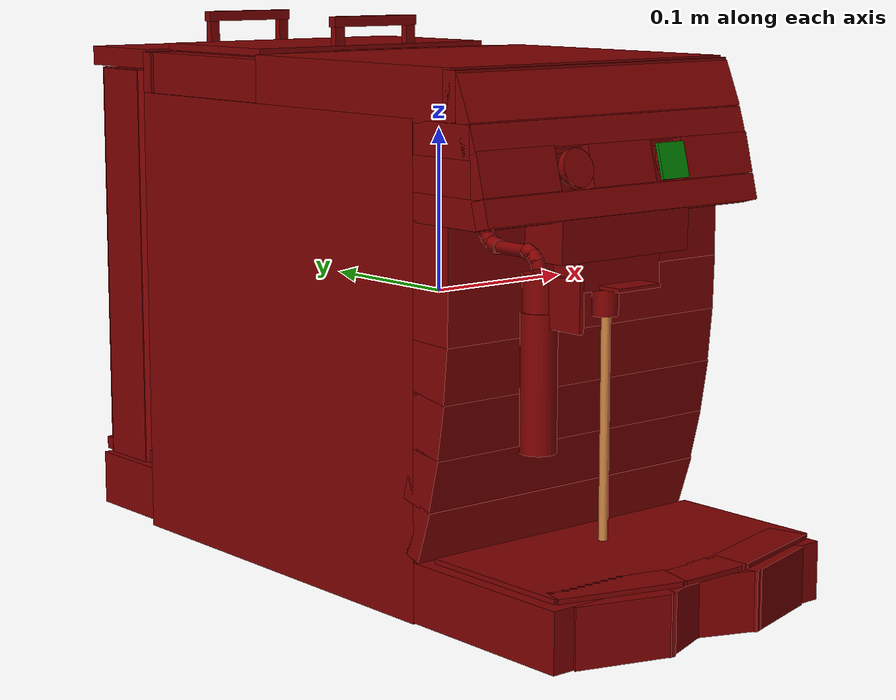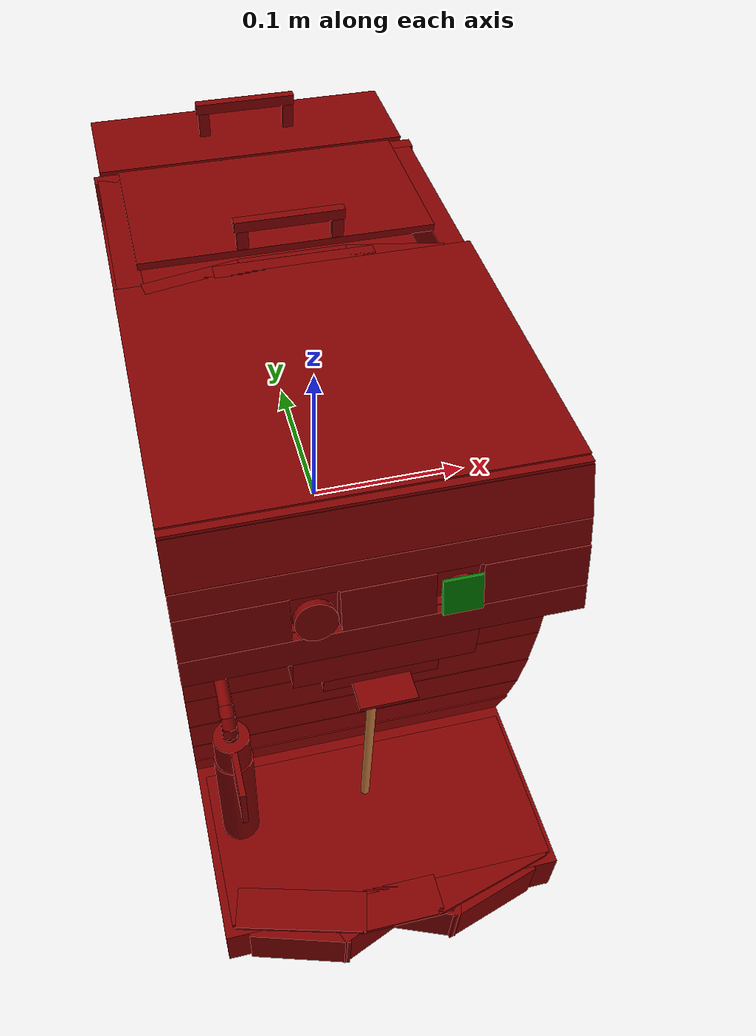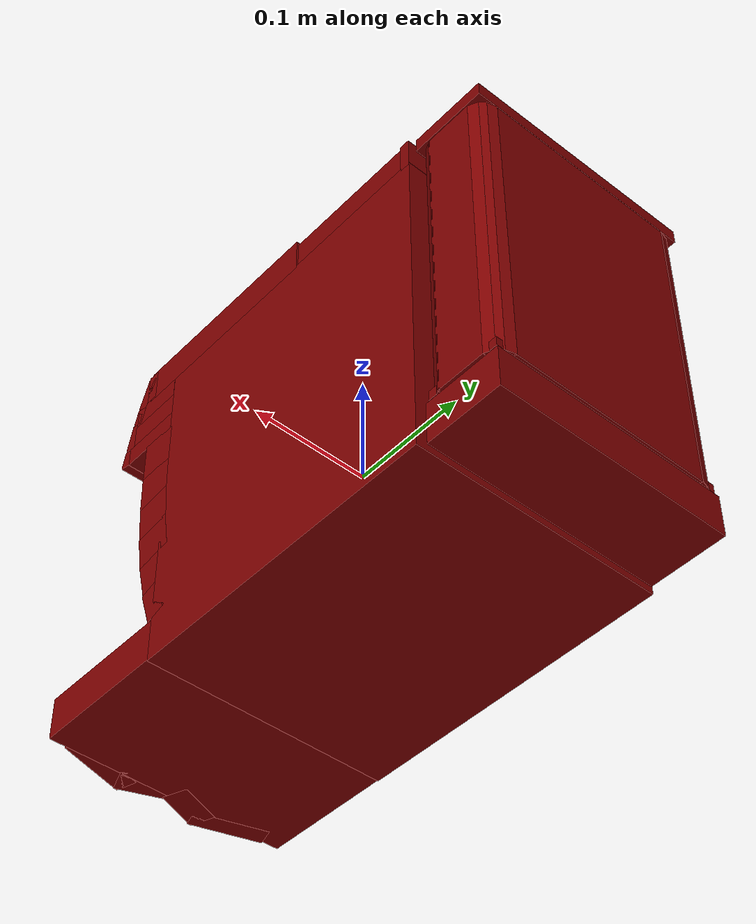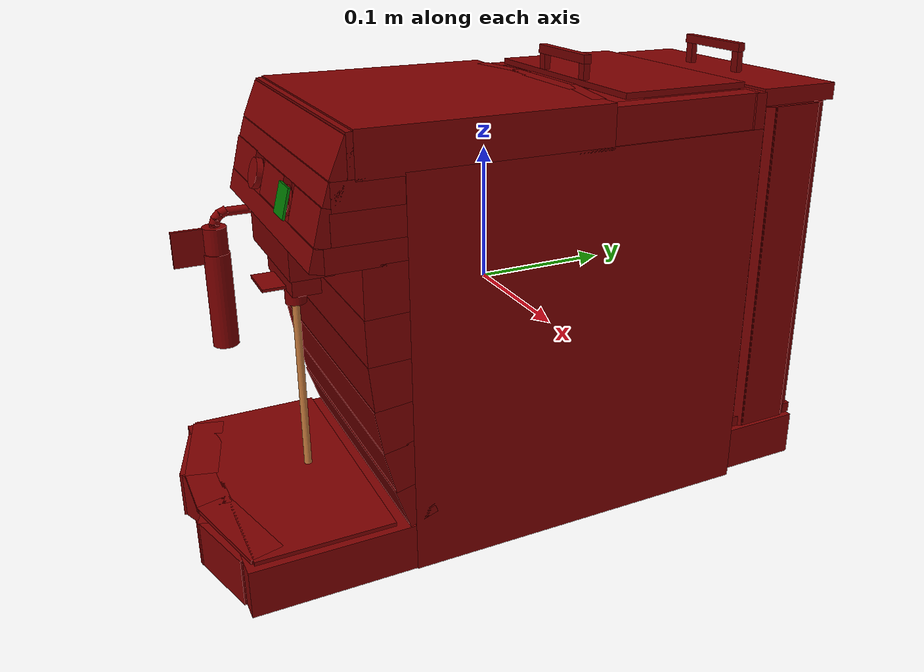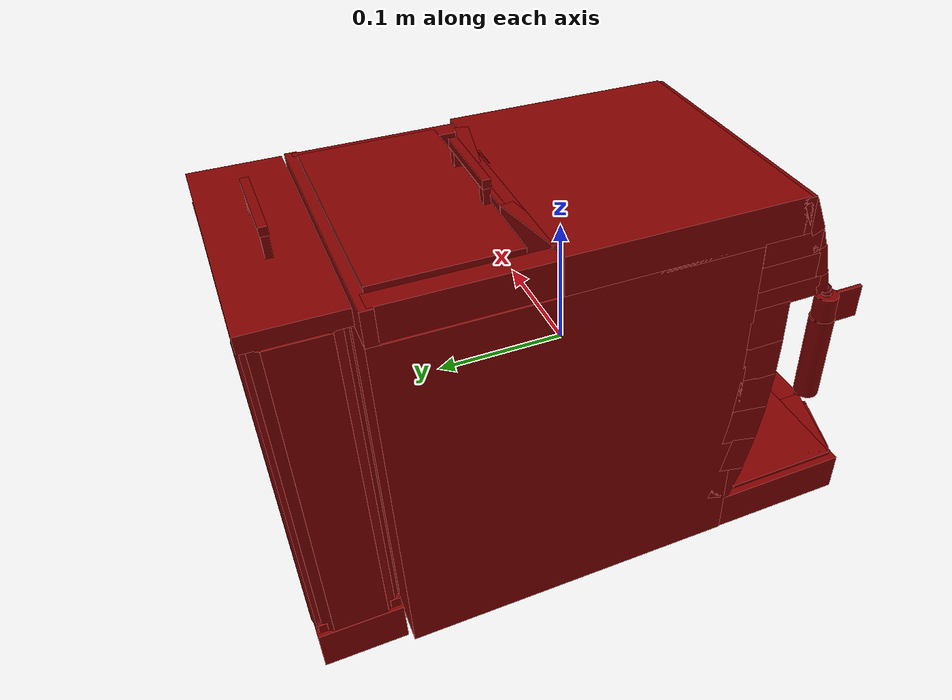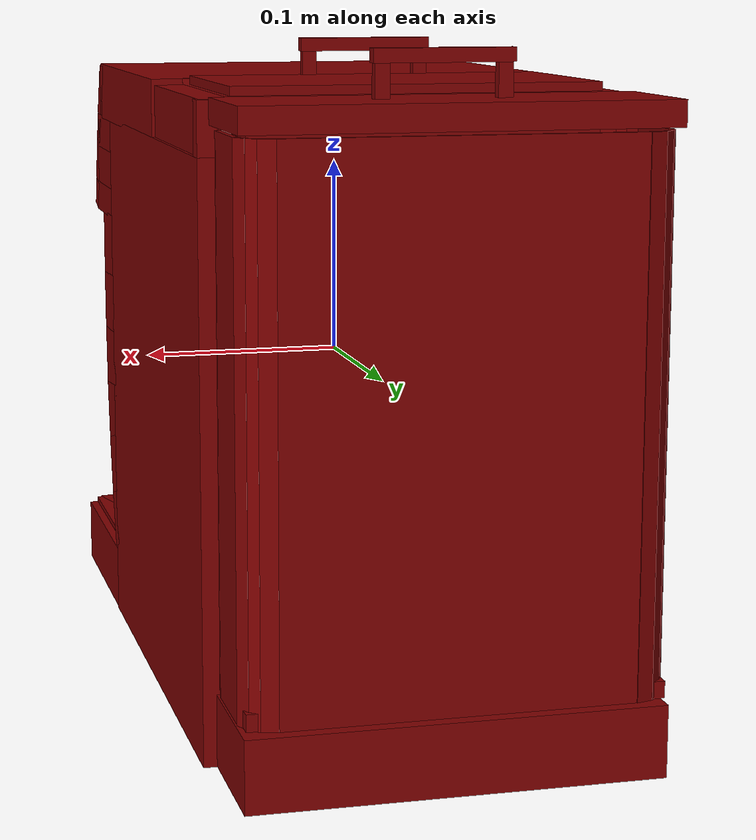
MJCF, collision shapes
<?xml version='1.0' encoding='UTF-8'?>
<mujoco model="model">
  <compiler angle="radian"/>
  <asset>
    <mesh file="visuals/Body001.obj" name="Body001_vis"/>
    <mesh file="visuals/Button001.obj" name="Button001_vis"/>
    <mesh file="visuals/Button002.obj" name="Button002_vis"/>
    <mesh file="visuals/Container001_Clear.obj" name="Container001_Clear_vis"/>
    <mesh file="visuals/Lever001.obj" name="Lever001_vis"/>
    <mesh file="visuals/Lid001.obj" name="Lid001_vis"/>
    <mesh file="visuals/Lid002.obj" name="Lid002_vis"/>
    <mesh file="visuals/Lid003.obj" name="Lid003_vis"/>
    <texture file="visuals/T_BC001.png" name="Body001_material" type="2d"/>
    <material name="Body001_material" rgba="1 1 1 1.0" texture="Body001_material" shininess="0.5" specular="0.3103448502657381"/>
    <texture file="visuals/T_BC001.png" name="Button001_material" type="2d"/>
    <material name="Button001_material" rgba="1 1 1 1.0" texture="Button001_material" shininess="0.5" specular="0.3103448502657381"/>
    <texture file="visuals/T_BC001.png" name="Button002_material" type="2d"/>
    <material name="Button002_material" rgba="1 1 1 1.0" texture="Button002_material" shininess="0.5" specular="0.3103448502657381"/>
    <texture file="visuals/T_BC001.png" name="Container001_Clear_material" type="2d"/>
    <material name="Container001_Clear_material" rgba="1 1 1 0.30000001192092896" texture="Container001_Clear_material" shininess="0.5" specular="0.3103448502657381"/>
    <texture file="visuals/T_BC001.png" name="Lid003_material" type="2d"/>
    <material name="Lid003_material" rgba="1 1 1 1.0" texture="Lid003_material" shininess="0.5" specular="0.3103448502657381"/>
    <texture file="visuals/T_BC001.png" name="Lever001_material" type="2d"/>
    <material name="Lever001_material" rgba="1 1 1 1.0" texture="Lever001_material" shininess="0.5" specular="0.3103448502657381"/>
    <texture file="visuals/T_BC001.png" name="Lid001_material" type="2d"/>
    <material name="Lid001_material" rgba="1 1 1 1.0" texture="Lid001_material" shininess="0.5" specular="0.3103448502657381"/>
    <texture file="visuals/T_BC001.png" name="Lid002_material" type="2d"/>
    <material name="Lid002_material" rgba="1 1 1 1.0" texture="Lid002_material" shininess="0.5" specular="0.3103448502657381"/>
  </asset>
  <default>
    <default class="visual">
      <geom conaffinity="0" contype="0" group="1" type="mesh"/>
    </default>
    <default class="collision">
      <geom group="0" rgba="0.5 0 0 0.5"/>
    </default>
    <default class="spawn">
      <geom group="0" rgba="1 1 1 0.5" contype="0" conaffinity="0"/>
      <site group="0" rgba="1 1 1 0.5"/>
    </default>
    <default class="region">
      <geom group="1" conaffinity="0" contype="0" rgba="0 1 0 0"/>
    </default>
  </default>
  <worldbody>
    <body>
      <body name="object">
        <geom class="collision" type="box" pos="0.037134 -0.160527 0.090308" size="0.010415244847536087 0.010415244847536087 0.0008930626208893955" quat="0.7933533191680908 0.6087614297866821 -1.3517219117058102e-16 -2.6126816801125714e-24" name="start_button" rgba="0.0 0.5 0 0.5"/>
        <site type="cylinder" rgba="0.8 0.5 0.25 1" size="0.0027536980342119932 0.07233459502458572" pos="-0.000577 -0.147272 -0.064970" name="coffee_liquid"/>
        <site rgba="0 0 0 0" size="0.009999999776482582 0.009999999776482582" pos="-0.000577 -0.147272 -0.117414" name="receptacle_place_site"/>
        <geom mesh="Body001_vis" type="mesh" solimp="0.998 0.998 0.001" solref="0.001 1" density="100" friction="0.95 0.3 0.1" class="visual" material="Body001_material"/>
        <geom class="collision" type="box" pos="-0.000000 0.033076 -0.024389" size="0.10385061055421829 0.13536663353443146 0.1417696475982666" quat="1.0 0.0 0.0 0.0"/>
        <geom class="collision" type="box" pos="0.000000 0.164074 0.129167" size="0.10385061055421829 0.004345276392996311 0.013829709030687809" quat="1.0 0.0 0.0 0.0"/>
        <geom class="collision" type="box" pos="-0.094301 0.103766 0.129167" size="0.05989970266819 0.007561163976788521 0.01382970716804266" quat="0.7071068286895752 0.0 -0.0 -0.7071067690849304"/>
        <geom class="collision" type="box" pos="0.094642 0.103766 0.129167" size="0.05989970266819 0.007561163976788521 0.01382970716804266" quat="0.7071068286895752 0.0 -0.0 -0.7071067690849304"/>
        <geom class="collision" type="box" pos="0.000000 -0.044546 0.130653" size="0.10385061055421829 0.08900878578424454 0.015315547585487366" quat="1.0 0.0 0.0 0.0"/>
        <geom class="collision" type="box" pos="0.000000 0.047775 0.130653" size="0.04721876606345177 0.0055664400570094585 0.015315547585487366" quat="1.0 0.0 0.0 0.0"/>
        <geom class="collision" type="box" pos="0.000000 0.055288 0.130653" size="0.03188616409897804 0.0018839340191334486 0.015315547585487366" quat="1.0 0.0 0.0 0.0"/>
        <geom class="collision" type="box" pos="-0.059276 0.046579 0.130653" size="0.028971705585718155 0.004871274344623089 0.015315547585487366" quat="0.9953288435935974 0.0 0.0 0.09654258191585541"/>
        <geom class="collision" type="box" pos="0.058891 0.046664 0.130653" size="0.028971707448363304 0.005043487995862961 0.015315547585487366" quat="9.394273803309261e-08 0.09654244780540466 0.9953288435935974 1.8650882793735946e-07"/>
        <geom class="collision" type="box" pos="0.000000 -0.159918 -0.147898" size="0.10385061055421829 0.057872675359249115 0.017408352345228195" quat="1.0 0.0 0.0 0.0"/>
        <geom class="collision" type="box" pos="-0.059053 -0.220451 -0.147898" size="0.030084267258644104 0.007930274121463299 0.017408352345228195" quat="0.9896388053894043 0.0 -0.0 -0.143579363822937"/>
        <geom class="collision" type="box" pos="0.057860 -0.219498 -0.147898" size="0.030084259808063507 0.008903853595256805 0.017408352345228195" quat="5.1323603145192465e-08 -0.14357930421829224 0.9896388053894043 1.720726459097932e-07"/>
        <geom class="collision" type="box" pos="-0.020771 -0.219244 -0.147898" size="0.01983846351504326 0.010606835596263409 0.017408352345228195" quat="0.9831233620643616 0.0 0.0 0.1829438954591751"/>
        <geom class="collision" type="box" pos="0.020363 -0.219244 -0.147898" size="0.01983846351504326 0.010606835596263409 0.017408352345228195" quat="1.0984424392290748e-07 0.1829439103603363 0.9831233620643616 1.7760930859367363e-07"/>
        <geom class="collision" type="box" pos="0.000000 -0.101451 -0.111393" size="0.10385061055421829 0.01613113470375538 0.010602785274386406" quat="0.5825121402740479 0.8128219842910767 -1.8048270990651252e-16 9.235185939952428e-24"/>
        <geom class="collision" type="box" pos="0.000000 -0.108744 -0.081855" size="0.10385061055421829 0.01613113470375538 0.011195383034646511" quat="0.6141020655632019 0.7892266511917114 -1.7524350672527925e-16 -2.0004558034709542e-24"/>
        <geom class="collision" type="box" pos="0.000000 -0.110567 -0.050251" size="0.10385061055421829 0.016131136566400528 0.015758054330945015" quat="0.6442039012908936 0.7648537755012512 -1.6983164117170412e-16 -1.4513890496866805e-23"/>
        <geom class="collision" type="box" pos="-0.000000 -0.114214 -0.019377" size="0.10385061055421829 0.016131136566400528 0.015758054330945015" quat="0.6718460917472839 0.7406907677650452 -1.6446637566511777e-16 -1.333264544422343e-23"/>
        <geom class="collision" type="box" pos="-0.000000 -0.116159 0.011863" size="0.10385061055421829 0.01613113470375538 0.015758052468299866" quat="0.6962460279464722 0.7178032398223877 -1.5938432356537978e-16 5.027924886283712e-24"/>
        <geom class="collision" type="box" pos="-0.000000 -0.116402 0.044925" size="0.10385061055421829 0.017620937898755074 0.015758058056235313" quat="0.707630455493927 0.7065827250480652 -1.5689288203014966e-16 -2.733011761581816e-23"/>
        <geom class="collision" type="box" pos="0.000000 -0.128663 0.069375" size="0.10385061055421829 0.026443947106599808 0.008293532766401768" quat="1.0 0.0 0.0 0.0"/>
        <geom class="collision" type="box" pos="0.000000 -0.125726 0.107413" size="0.10385061055421829 0.023252753540873528 0.009452405385673046" quat="1.0 0.0 0.0 0.0"/>
        <geom class="collision" type="box" pos="0.000000 -0.132817 0.130913" size="0.10385061055421829 0.005140719469636679 0.013905131258070469" quat="1.0 0.0 0.0 0.0"/>
        <geom class="collision" type="box" pos="0.000000 -0.139338 0.128565" size="0.10385061055421829 0.005140719469636679 0.013905131258070469" quat="0.9797577261924744 -0.20018696784973145 4.4450442804778463e-17 2.0013975061765618e-24"/>
        <geom class="collision" type="box" pos="0.000000 -0.146895 0.108244" size="0.10385061055421829 0.005140719469636679 0.007589207962155342" quat="0.9886624813079834 -0.15015475451946259 3.334105645361158e-17 -1.2039743046902811e-24"/>
        <geom class="collision" type="box" pos="0.000000 -0.157908 0.069960" size="0.10385061055421829 0.005140719469636679 0.007705593015998602" quat="0.9922476410865784 -0.12427633255720139 2.7594894127279263e-17 5.797133688633858e-25"/>
        <geom class="collision" type="box" pos="0.000000 -0.146242 0.052543" size="0.048668261617422104 0.01614558883011341 0.01374830026179552" quat="1.0 0.0 0.0 0.0"/>
        <geom class="collision" type="box" pos="0.000000 -0.147138 0.029898" size="0.03141579404473305 0.010052923113107681 0.008940882049500942" quat="1.0 0.0 0.0 0.0"/>
        <geom class="collision" type="box" pos="0.000000 -0.165110 0.022910" size="0.015898415818810463 0.008515176363289356 0.0010712944203987718" quat="1.0 0.0 0.0 0.0"/>
        <geom class="collision" type="cylinder" pos="-0.000843 -0.146876 0.012854" size="0.007553964853286743 0.008512386120855808" quat="1.0 0.0 0.0 0.0"/>
        <geom class="collision" type="box" pos="0.000000 -0.126207 0.087855" size="0.10385061055421829 0.02403733879327774 0.010288608260452747" quat="1.0 0.0 0.0 0.0"/>
        <geom class="collision" type="box" pos="-0.000451 0.203702 -0.147206" size="0.0985279455780983 0.03189034387469292 0.017388582229614258" quat="1.0 0.0 0.0 0.0"/>
        <geom class="collision" type="box" pos="-0.075875 -0.152682 0.090054" size="0.027956640347838402 0.005140719469636679 0.01253354363143444" quat="0.9922476410865784 -0.12427633255720139 2.7594894127279263e-17 5.797133688633858e-25"/>
        <geom class="collision" type="box" pos="0.076319 -0.152794 0.089615" size="0.027513351291418076 0.005140719469636679 0.01208063866943121" quat="0.9922476410865784 -0.12427633255720139 2.7594894127279263e-17 5.797133688633858e-25"/>
        <geom class="collision" type="box" pos="0.000648 -0.152794 0.089615" size="0.0239991694688797 0.005140719469636679 0.01208063866943121" quat="0.9922476410865784 -0.12427633255720139 2.7594894127279263e-17 5.797133688633858e-25"/>
        <body name="Button001">
          <joint axis="-1.4874174832110107e-17 0.9659257531166077 -0.2588190734386444" pos="-0.036265 -0.159544 0.089546" limited="true" name="Button001_joint" range="0.0 0.003" type="slide" damping="1" frictionloss="1" armature=".01" stiffness="0.05" springref="-0.1"/>
          <geom mesh="Button001_vis" type="mesh" solimp="0.998 0.998 0.001" solref="0.001 1" density="100" friction="0.95 0.3 0.1" class="visual" material="Button001_material"/>
          <geom class="collision" type="cylinder" pos="-0.036265 -0.159324 0.090513" size="0.010931293480098248 0.0022768608760088682" quat="0.7933533191680908 0.6087614297866821 -1.3517219117058102e-16 -2.6126816801125714e-24"/>
        </body>
        <body name="Button002">
          <joint axis="-1.4874174832110107e-17 0.9659257531166077 -0.2588190734386444" pos="0.037134 -0.159293 0.089977" limited="true" name="Button002_joint" range="0.0 0.003" type="slide" damping="1" frictionloss="1" armature=".01" stiffness="0.05" springref="-0.1"/>
          <geom mesh="Button002_vis" type="mesh" solimp="0.998 0.998 0.001" solref="0.001 1" density="100" friction="0.95 0.3 0.1" class="visual" material="Button002_material"/>
          <geom class="collision" type="cylinder" pos="0.037134 -0.158394 0.089736" size="0.010415244847536087 0.0008834953187033534" quat="0.7933533191680908 0.6087614297866821 -1.3517219117058102e-16 -2.6126816801125714e-24"/>
        </body>
        <body name="Container001_Clear">
          <joint axis="0.0 0.0 1.0" pos="-0.000597 0.203531 -0.011796" limited="true" name="Container001_Clear_joint" range="0.0 0.1" type="slide" damping="1" frictionloss="1" armature=".01" stiffness="0.05"/>
          <geom mesh="Container001_Clear_vis" type="mesh" solimp="0.998 0.998 0.001" solref="0.001 1" density="100" friction="0.95 0.3 0.1" class="visual" material="Container001_Clear_material"/>
          <geom class="collision" type="box" pos="-0.000000 0.235022 0.001668" size="0.08326917141675949 0.0012448341585695744 0.1288316249847412" quat="1.0 0.0 0.0 0.0"/>
          <geom class="collision" type="box" pos="-0.000000 0.172307 0.001668" size="0.08326917141675949 0.0012448341585695744 0.1288316249847412" quat="1.0 0.0 0.0 0.0"/>
          <geom class="collision" type="box" pos="-0.098437 0.203238 0.001668" size="0.02020031400024891 0.0012448341585695744 0.1288316249847412" quat="0.7071068286895752 0.0 -0.0 -0.7071067690849304"/>
          <geom class="collision" type="box" pos="0.097308 0.203238 0.001668" size="0.02020031400024891 0.0012448341585695744 0.1288316249847412" quat="0.7071068286895752 0.0 -0.0 -0.7071067690849304"/>
          <geom class="collision" type="box" pos="-0.096649 0.226436 0.001668" size="0.004168647341430187 0.0012448341585695744 0.1288316249847412" quat="0.529154360294342 0.0 -0.0 -0.8485255837440491"/>
          <geom class="collision" type="box" pos="-0.087107 0.234275 0.001668" size="0.004168647341430187 0.0012448341585695744 0.1288316249847412" quat="0.1368826925754547 0.0 -0.0 -0.9905872344970703"/>
          <geom class="collision" type="box" pos="-0.092850 0.231571 0.001668" size="0.002946387743577361 0.001244834391400218 0.1288316249847412" quat="0.3439255654811859 0.0 -0.0 -0.9389969110488892"/>
          <geom class="collision" type="box" pos="0.095756 0.226436 0.001668" size="0.004168651532381773 0.0012448378838598728 0.1288316249847412" quat="1.1032908986408074e-07 -0.8485255837440491 0.529154360294342 3.424172589916452e-08"/>
          <geom class="collision" type="box" pos="0.086214 0.234275 0.001668" size="0.0041686492040753365 0.0012448434717953205 0.1288316249847412" quat="1.879148925354457e-07 -0.9905872344970703 0.13688282668590546 -6.254319373510953e-08"/>
          <geom class="collision" type="box" pos="0.091957 0.231571 0.001668" size="0.002946389140561223 0.0012448435882106423 0.1288316249847412" quat="1.928527098016275e-07 -0.9389968514442444 0.34392574429512024 -3.959896588412448e-08"/>
          <geom class="collision" type="box" pos="-0.096649 0.181048 0.001668" size="0.004168651532381773 0.0012448378838598728 0.1288316249847412" quat="2.4111839636020704e-08 0.5291544795036316 0.8485255241394043 -1.0401195282838671e-07"/>
          <geom class="collision" type="box" pos="-0.087107 0.173208 0.001668" size="0.004168650135397911 0.0012448378838598728 0.1288316249847412" quat="6.445291234058459e-08 0.13688266277313232 0.9905872941017151 -8.512154181516962e-08"/>
          <geom class="collision" type="box" pos="-0.092850 0.175913 0.001668" size="0.002946391236037016 0.0012448380002751946 0.1288316249847412" quat="4.492661886956739e-08 0.34392574429512024 0.9389968514442444 -9.68579598747965e-08"/>
          <geom class="collision" type="box" pos="0.095756 0.181048 0.001668" size="0.004168648272752762 0.0012448362540453672 0.1288316249847412" quat="0.8485255837440491 4.6267196296412294e-08 5.708320038877446e-09 0.529154360294342"/>
          <geom class="collision" type="box" pos="0.086214 0.173208 0.001668" size="0.004168650135397911 0.0012448400957509875 0.1288316249847412" quat="0.9905872344970703 1.1312776848626527e-07 7.287757597396194e-08 0.13688282668590546"/>
          <geom class="collision" type="box" pos="0.091957 0.175913 0.001668" size="0.002946388442069292 0.0012448407942429185 0.1288316249847412" quat="0.9389968514442444 1.2196042575851607e-07 6.556465592666427e-08 0.34392574429512024"/>
          <geom class="collision" type="box" pos="-0.000451 0.203421 -0.122909" size="0.09727999567985535 0.030171487480401993 0.004045017994940281" quat="1.0 0.0 0.0 0.0"/>
          <body name="Lid003">
            <joint axis="0.0 0.0 1.0" pos="-0.000597 0.203531 0.137846" limited="true" name="Lid003_joint" range="0.0 0.1" type="slide" damping="1" frictionloss="1" armature=".01" stiffness="0.05"/>
            <geom mesh="Lid003_vis" type="mesh" solimp="0.998 0.998 0.001" solref="0.001 1" density="100" friction="0.95 0.3 0.1" class="visual" material="Lid003_material"/>
            <geom class="collision" type="box" pos="-0.000451 0.203421 0.138107" size="0.09930843114852905 0.03241795301437378 0.006119163706898689" quat="1.0 0.0 0.0 0.0"/>
            <geom class="collision" type="box" pos="0.000709 0.202845 0.162967" size="0.03243435546755791 0.0029803814832121134 0.003190913936123252" quat="1.0 0.0 0.0 0.0"/>
            <geom class="collision" type="box" pos="0.028879 0.202853 0.152093" size="0.0034317008685320616 0.0024682353250682354 0.007980492897331715" quat="1.0 0.0 0.0 0.0"/>
            <geom class="collision" type="box" pos="-0.027166 0.202853 0.152093" size="0.0034317008685320616 0.0024682353250682354 0.007980492897331715" quat="1.0 0.0 0.0 0.0"/>
          </body>
        </body>
        <body name="Lever001">
          <joint axis="0.0 0.0 1.0" pos="-0.084467 -0.140757 0.062141" limited="true" name="Lever001_joint" range="-0.7853981633974483 0.7853981633974483" type="hinge" damping="1" frictionloss="1" armature=".01" stiffness="0.01" springref="-0.1"/>
          <geom mesh="Lever001_vis" type="mesh" solimp="0.998 0.998 0.001" solref="0.001 1" density="100" friction="0.95 0.3 0.1" class="visual" material="Lever001_material"/>
          <geom class="collision" type="box" pos="-0.084467 -0.203820 0.026537" size="0.0014831729931756854 0.011660904623568058 0.014016982167959213" quat="1.0 0.0 0.0 0.0"/>
          <geom class="collision" type="cylinder" pos="-0.084467 -0.183260 -0.017476" size="0.00998516846448183 0.037780001759529114" quat="1.0 0.0 0.0 0.0"/>
          <geom class="collision" type="cylinder" pos="-0.084467 -0.183260 0.030370" size="0.009125753305852413 0.010445179417729378" quat="1.0 0.0 0.0 0.0"/>
          <geom class="collision" type="cylinder" pos="-0.084467 -0.162280 0.051163" size="0.0034377879928797483 0.011636033654212952" quat="0.7071068286895752 0.7071067690849304 -1.5700924318127872e-16 -5.9269340452702814e-24"/>
          <geom class="collision" type="cylinder" pos="-0.084467 -0.175918 0.050808" size="0.0038652813527733088 0.0031983964145183563" quat="0.5620652437210083 0.8270928859710693 -1.8365151310175006e-16 1.6991271093250847e-24"/>
          <geom class="collision" type="cylinder" pos="-0.084467 -0.179844 0.048228" size="0.0038652813527733088 0.0031983964145183563" quat="0.3725944757461548 0.9279942512512207 -2.0605611689177754e-16 1.6253715334722694e-23"/>
          <geom class="collision" type="cylinder" pos="-0.084467 -0.182218 0.044284" size="0.0038652813527733088 0.0031983964145183563" quat="0.1722848266363144 0.9850471615791321 -2.1872468575804768e-16 1.99480882156702e-23"/>
          <geom class="collision" type="cylinder" pos="-0.084467 -0.182891 0.040227" size="0.0038652813527733088 0.0031983964145183563" quat="0.008437251672148705 0.9999644160270691 -2.220367036958202e-16 9.246119552098791e-24"/>
          <geom class="collision" type="cylinder" pos="-0.084467 -0.148613 0.051769" size="0.004256662912666798 0.0031790086068212986" quat="0.6109145283699036 0.7916965484619141 -1.7579197379351621e-16 5.969173996870793e-24"/>
          <geom class="collision" type="cylinder" pos="-0.084467 -0.144272 0.053413" size="0.00401742197573185 0.0030003355350345373" quat="0.4699932634830475 0.882669985294342 -1.9599210816386537e-16 -1.6739328641645887e-24"/>
          <geom class="collision" type="cylinder" pos="-0.084467 -0.141165 0.058389" size="0.004228831268846989 0.002063020132482052" quat="0.0038151212502270937 0.9999927282333374 -2.220429902684756e-16 1.1298587321633682e-23"/>
          <geom class="collision" type="cylinder" pos="-0.084467 -0.141944 0.056205" size="0.004228831268846989 0.002535817679017782" quat="0.26043400168418884 0.9654916524887085 -2.143822125352709e-16 5.2777918448470365e-24"/>
        </body>
        <body name="Lid001">
          <joint axis="0.0 0.0 1.0" pos="0.000557 -0.170878 -0.127690" limited="true" name="Lid001_joint" range="0.0 0.03" type="slide" damping="1" frictionloss="1" armature=".01" stiffness="0.05" springref="-15"/>
          <geom mesh="Lid001_vis" type="mesh" solimp="0.998 0.998 0.001" solref="0.001 1" density="100" friction="0.95 0.3 0.1" class="visual" material="Lid001_material"/>
          <geom class="collision" type="box" pos="0.000573 -0.163939 -0.127512" size="0.09955251961946487 0.048658475279808044 0.0014220435405150056" quat="1.0 0.0 0.0 0.0"/>
          <geom class="collision" type="box" pos="0.000573 -0.221855 -0.127512" size="0.025284498929977417 0.01186862587928772 0.0014220435405150056" quat="1.0 0.0 0.0 0.0"/>
          <geom class="collision" type="box" pos="-0.057018 -0.212612 -0.127512" size="0.038862444460392 0.011868624947965145 0.0014220435405150056" quat="0.9915341734886169 0.0 -0.0 -0.12984591722488403"/>
          <geom class="collision" type="box" pos="0.057082 -0.212612 -0.127512" size="0.038862444460392 0.011868624947965145 0.0014220435405150056" quat="5.3704201974369425e-08 -0.1298457533121109 0.9915342330932617 1.713444248707674e-07"/>
        </body>
        <body name="Lid002">
          <joint axis="-1.0 0.0 0.0" pos="0.000110 0.160529 0.145803" limited="true" name="Lid002_joint" range="0.0 1.5707963267948966" type="hinge" damping="1" frictionloss="1" armature=".01" stiffness="0.05"/>
          <geom mesh="Lid002_vis" type="mesh" solimp="0.998 0.998 0.001" solref="0.001 1" density="100" friction="0.95 0.3 0.1" class="visual" material="Lid002_material"/>
          <geom class="collision" type="box" pos="-0.000451 0.111741 0.146153" size="0.08798467367887497 0.049731526523828506 0.0021538978908210993" quat="1.0 0.0 0.0 0.0"/>
          <geom class="collision" type="box" pos="-0.027166 0.065154 0.152093" size="0.0034317008685320616 0.0024682353250682354 0.007980492897331715" quat="1.0 0.0 0.0 0.0"/>
          <geom class="collision" type="box" pos="0.028879 0.065154 0.152093" size="0.0034317008685320616 0.0024682353250682354 0.007980492897331715" quat="1.0 0.0 0.0 0.0"/>
          <geom class="collision" type="box" pos="0.000709 0.065146 0.162967" size="0.03243435546755791 0.0029803814832121134 0.003190913936123252" quat="1.0 0.0 0.0 0.0"/>
        </body>
        <geom class="region" name="reg_main" type="box" pos="0.0 0.0006030000000000063 -0.008068000000000006" size="0.101782 0.23522900000000002 0.15600599999999998"/>
      </body>
    </body>
  </worldbody>
  <actuator>
    <motor name="Button001_joint_actuator" joint="Button001_joint" gear="0.5"/>
    <motor name="Button002_joint_actuator" joint="Button002_joint" gear="0.5"/>
    <motor name="Container001_Clear_joint_actuator" joint="Container001_Clear_joint" gear="10"/>
    <motor name="Lever001_joint_actuator" joint="Lever001_joint" gear="10"/>
    <motor name="Lid001_joint_actuator" joint="Lid001_joint" gear="10"/>
    <motor name="Lid002_joint_actuator" joint="Lid002_joint" gear="10"/>
    <motor name="Lid003_joint_actuator" joint="Lid003_joint" gear="10"/>
  </actuator>
</mujoco>
